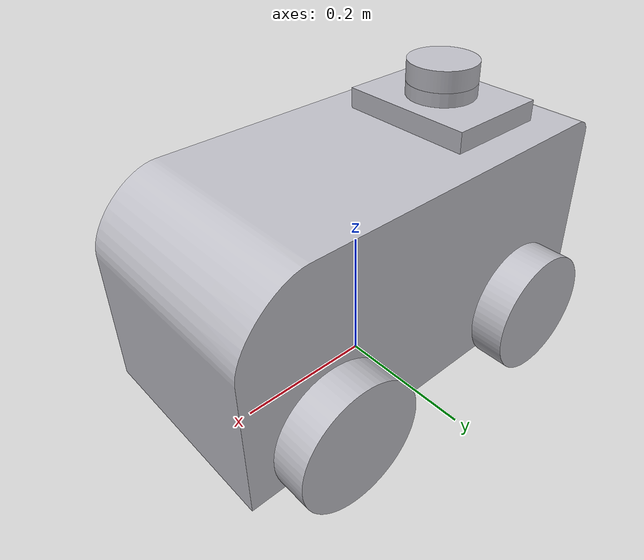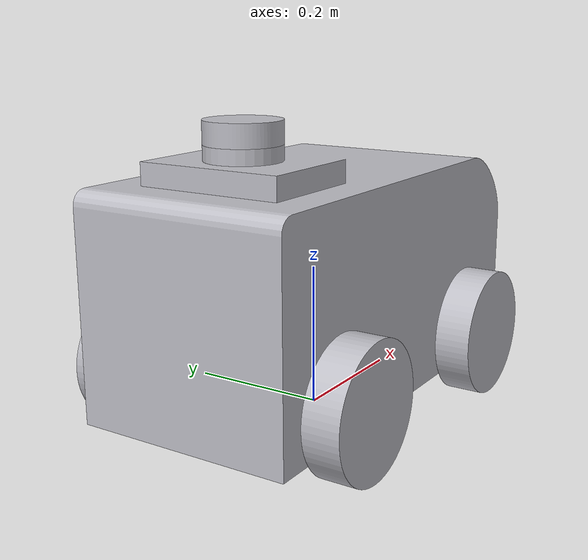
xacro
<?xml version="1.0" ?>
<robot name="demo_rover" xmlns:xacro="http://www.ros.org/wiki/xacro">

<xacro:include filename="$(find demo_rover_description)/urdf/materials.xacro" />
<xacro:include filename="$(find demo_rover_description)/urdf/demo_rover.trans" />
<xacro:include filename="$(find demo_rover_description)/urdf/demo_rover.gazebo" />
<link name="base_link">
  <inertial>
    <origin xyz="-0.007031150413168912 0.0 0.190988852993785" rpy="0 0 0"/>
    <mass value="57.69474606362084"/>
    <inertia ixx="0.881354" iyy="2.133385" izz="2.116392" ixy="-0.0" iyz="0.0" ixz="0.057857"/>
  </inertial>
  <visual>
    <origin xyz="0 0 0" rpy="0 0 0"/>
    <geometry>
      <mesh filename="package://demo_rover_description/meshes/base_link.stl" scale="0.001 0.001 0.001"/>
    </geometry>
    <material name="silver"/>
  </visual>
  <collision>
    <origin xyz="0 0 0" rpy="0 0 0"/>
    <geometry>
      <mesh filename="package://demo_rover_description/meshes/base_link.stl" scale="0.001 0.001 0.001"/>
    </geometry>
  </collision>
</link>

<link name="right_wheel_front_1">
  <inertial>
    <origin xyz="5.551115123125783e-17 -0.024999999999999994 0.0" rpy="0 0 0"/>
    <mass value="1.813091660203009"/>
    <inertia ixx="0.004049" iyy="0.007343" izz="0.004049" ixy="0.0" iyz="-0.0" ixz="-0.0"/>
  </inertial>
  <visual>
    <origin xyz="-0.175 0.15 -0.09" rpy="0 0 0"/>
    <geometry>
      <mesh filename="package://demo_rover_description/meshes/right_wheel_front_1.stl" scale="0.001 0.001 0.001"/>
    </geometry>
    <material name="silver"/>
  </visual>
  <collision>
    <origin xyz="-0.175 0.15 -0.09" rpy="0 0 0"/>
    <geometry>
      <mesh filename="package://demo_rover_description/meshes/right_wheel_front_1.stl" scale="0.001 0.001 0.001"/>
    </geometry>
  </collision>
</link>

<link name="right_wheel_behind_1">
  <inertial>
    <origin xyz="2.7755575615628914e-17 -0.024999999999999994 0.0" rpy="0 0 0"/>
    <mass value="1.813091660203009"/>
    <inertia ixx="0.004049" iyy="0.007343" izz="0.004049" ixy="0.0" iyz="-0.0" ixz="0.0"/>
  </inertial>
  <visual>
    <origin xyz="0.175 0.15 -0.09" rpy="0 0 0"/>
    <geometry>
      <mesh filename="package://demo_rover_description/meshes/right_wheel_behind_1.stl" scale="0.001 0.001 0.001"/>
    </geometry>
    <material name="silver"/>
  </visual>
  <collision>
    <origin xyz="0.175 0.15 -0.09" rpy="0 0 0"/>
    <geometry>
      <mesh filename="package://demo_rover_description/meshes/right_wheel_behind_1.stl" scale="0.001 0.001 0.001"/>
    </geometry>
  </collision>
</link>

<link name="left_wheel_behind_1">
  <inertial>
    <origin xyz="2.7755575615628914e-17 0.024999999999999994 0.0" rpy="0 0 0"/>
    <mass value="1.813091660203009"/>
    <inertia ixx="0.004049" iyy="0.007343" izz="0.004049" ixy="-0.0" iyz="0.0" ixz="0.0"/>
  </inertial>
  <visual>
    <origin xyz="0.175 -0.15 -0.09" rpy="0 0 0"/>
    <geometry>
      <mesh filename="package://demo_rover_description/meshes/left_wheel_behind_1.stl" scale="0.001 0.001 0.001"/>
    </geometry>
    <material name="silver"/>
  </visual>
  <collision>
    <origin xyz="0.175 -0.15 -0.09" rpy="0 0 0"/>
    <geometry>
      <mesh filename="package://demo_rover_description/meshes/left_wheel_behind_1.stl" scale="0.001 0.001 0.001"/>
    </geometry>
  </collision>
</link>

<link name="left_wheel_front_1">
  <inertial>
    <origin xyz="5.551115123125783e-17 0.024999999999999994 0.0" rpy="0 0 0"/>
    <mass value="1.813091660203009"/>
    <inertia ixx="0.004049" iyy="0.007343" izz="0.004049" ixy="-0.0" iyz="0.0" ixz="0.0"/>
  </inertial>
  <visual>
    <origin xyz="-0.175 -0.15 -0.09" rpy="0 0 0"/>
    <geometry>
      <mesh filename="package://demo_rover_description/meshes/left_wheel_front_1.stl" scale="0.001 0.001 0.001"/>
    </geometry>
    <material name="silver"/>
  </visual>
  <collision>
    <origin xyz="-0.175 -0.15 -0.09" rpy="0 0 0"/>
    <geometry>
      <mesh filename="package://demo_rover_description/meshes/left_wheel_front_1.stl" scale="0.001 0.001 0.001"/>
    </geometry>
  </collision>
</link>

<link name="lidar_1">
  <inertial>
    <origin xyz="-2.7755575615628914e-17 -9.650038500203382e-18 0.015000000000000013" rpy="0 0 0"/>
    <mass value="0.3251548396465435"/>
    <inertia ixx="0.000228" iyy="0.000228" izz="0.000406" ixy="-0.0" iyz="0.0" ixz="0.0"/>
  </inertial>
  <visual>
    <origin xyz="0.16 0.0 -0.39" rpy="0 0 0"/>
    <geometry>
      <mesh filename="package://demo_rover_description/meshes/lidar_1.stl" scale="0.001 0.001 0.001"/>
    </geometry>
    <material name="silver"/>
  </visual>
  <collision>
    <origin xyz="0.16 0.0 -0.39" rpy="0 0 0"/>
    <geometry>
      <mesh filename="package://demo_rover_description/meshes/lidar_1.stl" scale="0.001 0.001 0.001"/>
    </geometry>
  </collision>
</link>

<joint name="Rigid 6" type="fixed">
  <origin xyz="0.175 -0.15 0.09" rpy="0 0 0"/>
  <parent link="base_link"/>
  <child link="right_wheel_front_1"/>
</joint>

<joint name="Revolute 7" type="continuous">
  <origin xyz="-0.175 -0.15 0.09" rpy="0 0 0"/>
  <parent link="base_link"/>
  <child link="right_wheel_behind_1"/>
  <axis xyz="0.0 1.0 0.0"/>
</joint>

<joint name="Revolute 8" type="continuous">
  <origin xyz="-0.175 0.15 0.09" rpy="0 0 0"/>
  <parent link="base_link"/>
  <child link="left_wheel_behind_1"/>
  <axis xyz="0.0 -1.0 0.0"/>
</joint>

<joint name="Rigid 9" type="fixed">
  <origin xyz="0.175 0.15 0.09" rpy="0 0 0"/>
  <parent link="base_link"/>
  <child link="left_wheel_front_1"/>
</joint>

<joint name="Rigid 10" type="fixed">
  <origin xyz="-0.16 0.0 0.39" rpy="0 0 0"/>
  <parent link="base_link"/>
  <child link="lidar_1"/>
</joint>

</robot>

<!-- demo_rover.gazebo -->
<robot name="demo_rover" xmlns:xacro="http://www.ros.org/wiki/xacro" >

<xacro:property name="body_color" value="Gazebo/Silver" />

<gazebo>
  <plugin name="control" filename="libgazebo_ros_control.so"/>
</gazebo>
<gazebo reference="base_link">
  <material>${body_color}</material>
  <mu1>0.2</mu1>
  <mu2>0.2</mu2>
  <selfCollide>true</selfCollide>
  <gravity>true</gravity>
</gazebo>

<gazebo reference="right_wheel_front_1">
  <material>${body_color}</material>
  <mu1>0.2</mu1>
  <mu2>0.2</mu2>
  <selfCollide>true</selfCollide>
</gazebo>

<gazebo reference="right_wheel_behind_1">
  <material>${body_color}</material>
  <mu1>0.2</mu1>
  <mu2>0.2</mu2>
  <selfCollide>true</selfCollide>
</gazebo>

<gazebo reference="left_wheel_behind_1">
  <material>${body_color}</material>
  <mu1>0.2</mu1>
  <mu2>0.2</mu2>
  <selfCollide>true</selfCollide>
</gazebo>

<gazebo reference="left_wheel_front_1">
  <material>${body_color}</material>
  <mu1>0.2</mu1>
  <mu2>0.2</mu2>
  <selfCollide>true</selfCollide>
</gazebo>

<gazebo reference="lidar_1">
  <material>${body_color}</material>
  <mu1>0.2</mu1>
  <mu2>0.2</mu2>
  <selfCollide>true</selfCollide>
</gazebo>

</robot>
